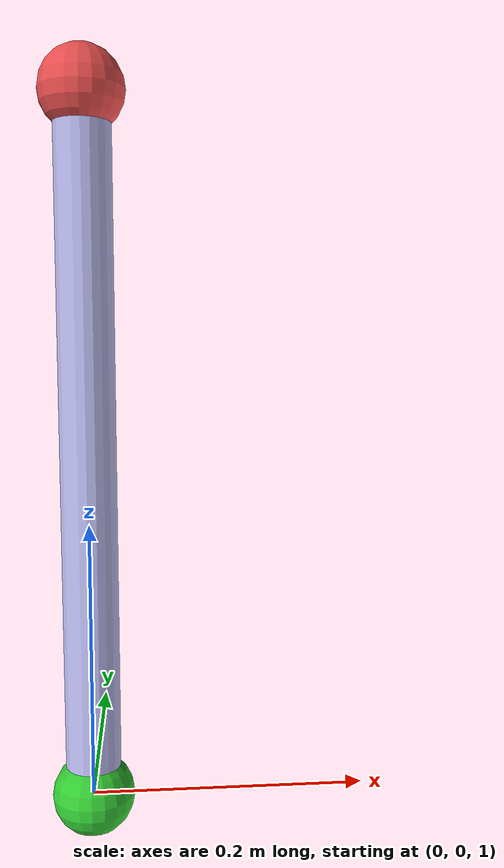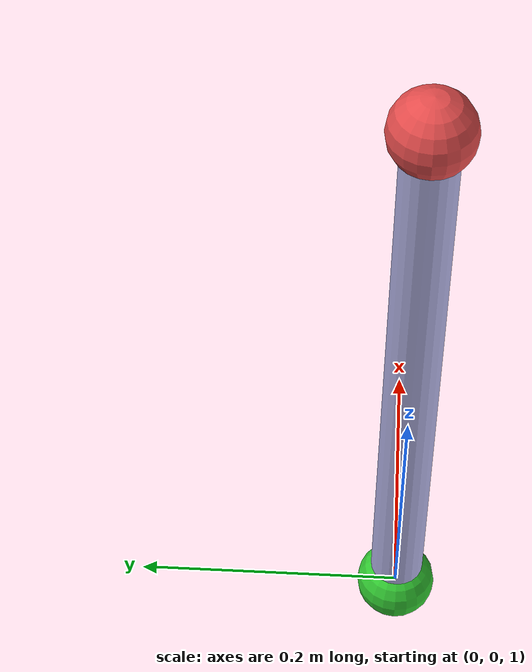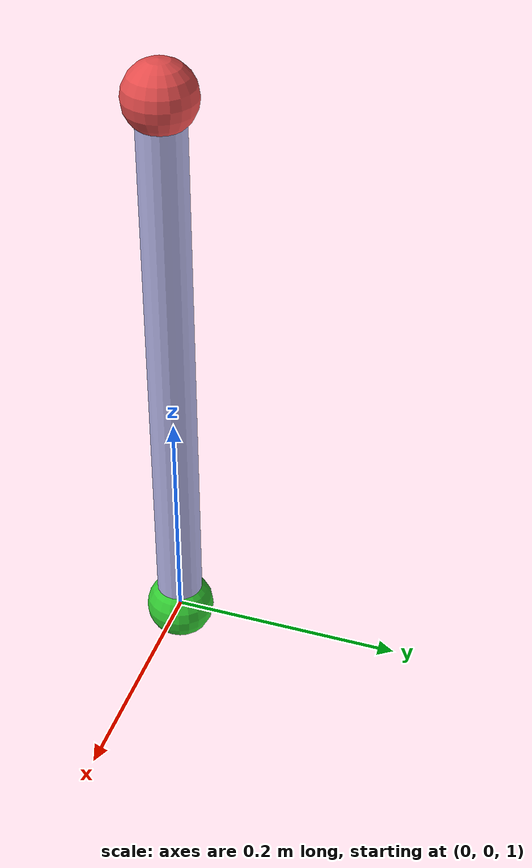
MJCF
<mujoco model="pendulum.xml">
    <compiler angle="radian" autolimits="true"/>

    <include file="floor.xml"/>

    <option integrator="implicitfast" gravity="0 0 -9.81"/>

    <default>
        <joint damping="0.1"/>
        <geom rgba="0.8 0.8 0.8 1" friction="0.8 0.1 0.1"/>
    </default>

    <worldbody>
        <light name="top" pos="0 0 3.0"/>

        <body name="point" pos="0 0 1">
            <joint name="x_slide" type="slide" axis="1 0 0" range="-5.0 5.0"/>
            <!--    台車相当の設定
                    name    :
                    type    :
                    size    :
                    rgba    :
            -->
            <geom   name="point_geom"
                    type="sphere"
                    size="0.03"
                    mass="5.0"
                    rgba="0.2 0.8 0.2 1"
            />

            <body name="link">
                <joint name="pend_hinge" type="hinge" axis="0 1 0" limited="false" damping="0.1"/>
                <geom   name="rod"
                        type="capsule"
                        fromto="0 0 0  0 0 0.5"
                        size="0.02"
                        density="2700"
                        rgba="0.7 0.7 0.9 1"
                />
                <!-- 質点確認用 -->
                <geom   name="tip_mass"
                        type="sphere"
                        pos="0 0 0.5"
                        size="0.03"
                        mass="0.0001"
                        rgba="0.9 0.3 0.3 1"
                />
            </body>
        </body>

    </worldbody>

    <actuator>
        <!-- 台車のみ駆動（棒のアクチュエータは削除） -->
        <motor name="x_motor" joint="x_slide" ctrllimited="true" ctrlrange="-50 50"/>
    </actuator>

    <keyframe>
        <!-- ctrl はアクチュエータ数と一致させる：1要素に修正 -->
        <key name="home" qpos="0 0" ctrl="0"/>
    </keyframe>

</mujoco>

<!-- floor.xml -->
<mujoco>
    <!--
        シミュレーション時間の設定
        dt = 0.005[s](200Hz)
    -->
    <option timestep="0.005" />

    <!--
        asset   :   見た目を一括管理する箇所
            texture     :   見た目
            material    :   物体にどう貼るか・反射・色味
    -->
    <asset>
        <texture type="skybox" builtin="gradient" rgb1=".3 .5 .7" rgb2="0 0 0" width="512" height="512" />

        <texture name="body" type="cube" builtin="flat" mark="cross" width="127" height="1278"
            rgb1="0.8 0.6 0.4" rgb2="0.8 0.6 0.4" markrgb="1 1 1" random="0.01" />

        <material name="body" texture="body" texuniform="true" rgba="0.8 0.6 .4 1" />

        <texture
            name="grid"
            type="2d"
            builtin="checker"
            width="512"
            height="512"
            rgb1=".05 .1 .15"
            rgb2=".3 .4 .5"
            mark="cross"
            markrgb="1 1 1"
        />

        <material name="grid" texture="grid" texrepeat="1 1" texuniform="true" reflectance=".1" />
    </asset>

    <default>
        <motor ctrlrange="-1 1" ctrllimited="true" />
        <default class="body">
            <geom condim="1" friction=".7" solimp=".9 .99 .003" solref=".015 1" material="body" />
            <joint damping=".02" stiffness=".1" armature=".01" solimplimit="0 .99 .01" />
        </default>
    </default>

    <visual>
        <map force="0.1" zfar="30" />
        <rgba haze="0.15 0.25 0.35 1" />
        <quality shadowsize="4096" />
        <global offwidth="800" offheight="800" />
    </visual>

    <!--
        床
        光源
    -->
    <worldbody>
        <geom name="floor" size="0 0 .05" type="plane" material="grid" condim="3" />
        <light name="worldlight" directional="true" ambient="0.2 0.2 0.2" diffuse="0.8 0.8 0.8"
            specular="0.3 0.3 0.3" castshadow="false" pos="0 0 4" dir="0 0 -90"></light>
    </worldbody>
</mujoco>
